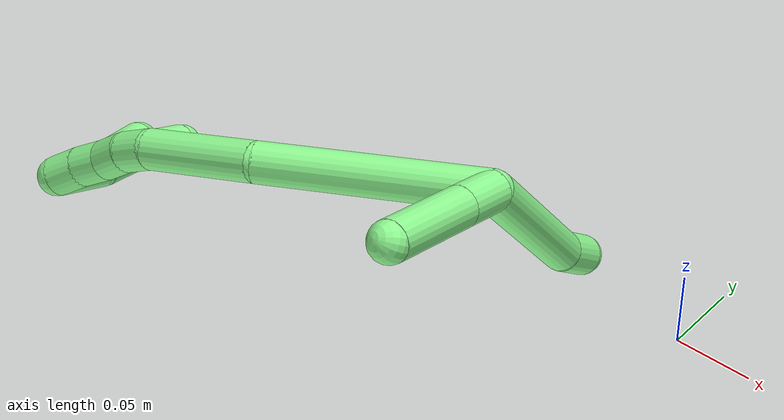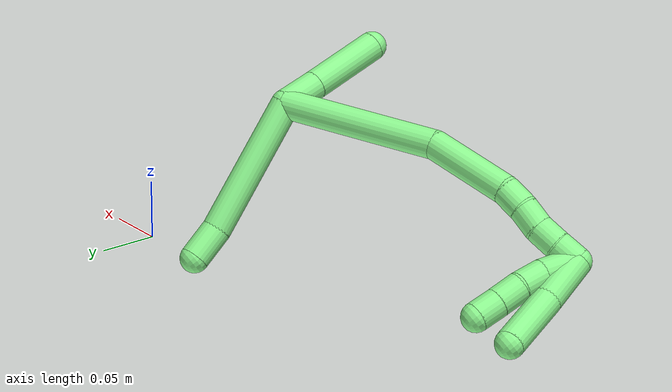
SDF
<sdf version="1.7">
 <world name="default">
  <model name="13">
   <static>0</static>
   <link name="13">
    <collision name="collision-cylinder-e_1_2_8">
     <pose>-0.022403 0.000159 -0.055424 -3.13872 -0.384132 3.12682</pose>
     <geometry><cylinder><radius>0.0125</radius><length>0.119563</length></cylinder></geometry>
     <surface>
      <friction><ode><mu>1.16</mu><mu2>1.16</mu2><slip1>0</slip1><slip2>0</slip2></ode></friction>
      <contact><ode><kp>1e+06</kp><kd>1</kd><max_vel>0</max_vel><min_depth>0.001</min_depth></ode></contact>
     </surface>
    </collision>
    <visual name="visual-cylinder-e_1_2_8">
     <pose>-0.022403 0.000159 -0.055424 -3.13872 -0.384132 3.12682</pose>
     <geometry><cylinder><radius>0.0125</radius><length>0.119563</length></cylinder></geometry>
     <material><ambient>0.564706 0.984314 0.572549 1</ambient></material>
    </visual>
    <collision name="collision-cylinder-e_2_8_6">
     <pose>-0.048424 0.002939 -0.125397 -2.96337 -0.239979 1.8661</pose>
     <geometry><cylinder><radius>0.0125</radius><length>0.030437</length></cylinder></geometry>
     <surface>
      <friction><ode><mu>1.16</mu><mu2>1.16</mu2><slip1>0</slip1><slip2>0</slip2></ode></friction>
      <contact><ode><kp>1e+06</kp><kd>1</kd><max_vel>0</max_vel><min_depth>0.001</min_depth></ode></contact>
     </surface>
    </collision>
    <visual name="visual-cylinder-e_2_8_6">
     <pose>-0.048424 0.002939 -0.125397 -2.96337 -0.239979 1.8661</pose>
     <geometry><cylinder><radius>0.0125</radius><length>0.030437</length></cylinder></geometry>
     <material><ambient>0.564706 0.984314 0.572549 1</ambient></material>
    </visual>
    <collision name="collision-cylinder-e_1_2_9">
     <pose>-0.001057 -0.007156 0.014824 0.44976 -0.064145 -0.014678</pose>
     <geometry><cylinder><radius>0.0125</radius><length>0.03299</length></cylinder></geometry>
     <surface>
      <friction><ode><mu>1.16</mu><mu2>1.16</mu2><slip1>0</slip1><slip2>0</slip2></ode></friction>
      <contact><ode><kp>1e+06</kp><kd>1</kd><max_vel>0</max_vel><min_depth>0.001</min_depth></ode></contact>
     </surface>
    </collision>
    <visual name="visual-cylinder-e_1_2_9">
     <pose>-0.001057 -0.007156 0.014824 0.44976 -0.064145 -0.014678</pose>
     <geometry><cylinder><radius>0.0125</radius><length>0.03299</length></cylinder></geometry>
     <material><ambient>0.564706 0.984314 0.572549 1</ambient></material>
    </visual>
    <collision name="collision-cylinder-e_2_9_5">
     <pose>-0.003573 -0.028884 0.059783 0.450388 -0.043548 -0.009977</pose>
     <geometry><cylinder><radius>0.0125</radius><length>0.06701</length></cylinder></geometry>
     <surface>
      <friction><ode><mu>1.16</mu><mu2>1.16</mu2><slip1>0</slip1><slip2>0</slip2></ode></friction>
      <contact><ode><kp>1e+06</kp><kd>1</kd><max_vel>0</max_vel><min_depth>0.001</min_depth></ode></contact>
     </surface>
    </collision>
    <visual name="visual-cylinder-e_2_9_5">
     <pose>-0.003573 -0.028884 0.059783 0.450388 -0.043548 -0.009977</pose>
     <geometry><cylinder><radius>0.0125</radius><length>0.06701</length></cylinder></geometry>
     <material><ambient>0.564706 0.984314 0.572549 1</ambient></material>
    </visual>
    <collision name="collision-cylinder-e_1_2_10">
     <pose>-0.053494 0.028206 0.035093 -0.677025 -0.871167 0.324812</pose>
     <geometry><cylinder><radius>0.0125</radius><length>0.13984</length></cylinder></geometry>
     <surface>
      <friction><ode><mu>1.16</mu><mu2>1.16</mu2><slip1>0</slip1><slip2>0</slip2></ode></friction>
      <contact><ode><kp>1e+06</kp><kd>1</kd><max_vel>0</max_vel><min_depth>0.001</min_depth></ode></contact>
     </surface>
    </collision>
    <visual name="visual-cylinder-e_1_2_10">
     <pose>-0.053494 0.028206 0.035093 -0.677025 -0.871167 0.324812</pose>
     <geometry><cylinder><radius>0.0125</radius><length>0.13984</length></cylinder></geometry>
     <material><ambient>0.564706 0.984314 0.572549 1</ambient></material>
    </visual>
    <collision name="collision-cylinder-e_2_10_11">
     <pose>-0.139571 0.074841 0.079103 -1.12017 -1.00982 0.667243</pose>
     <geometry><cylinder><radius>0.0125</radius><length>0.076959</length></cylinder></geometry>
     <surface>
      <friction><ode><mu>1.16</mu><mu2>1.16</mu2><slip1>0</slip1><slip2>0</slip2></ode></friction>
      <contact><ode><kp>1e+06</kp><kd>1</kd><max_vel>0</max_vel><min_depth>0.001</min_depth></ode></contact>
     </surface>
    </collision>
    <visual name="visual-cylinder-e_2_10_11">
     <pose>-0.139571 0.074841 0.079103 -1.12017 -1.00982 0.667243</pose>
     <geometry><cylinder><radius>0.0125</radius><length>0.076959</length></cylinder></geometry>
     <material><ambient>0.564706 0.984314 0.572549 1</ambient></material>
    </visual>
    <collision name="collision-cylinder-e_3_11_12">
     <pose>-0.182139 0.097153 0.088574 -1.42872 -1.19642 1.06749</pose>
     <geometry><cylinder><radius>0.0125</radius><length>0.02146</length></cylinder></geometry>
     <surface>
      <friction><ode><mu>1.16</mu><mu2>1.16</mu2><slip1>0</slip1><slip2>0</slip2></ode></friction>
      <contact><ode><kp>1e+06</kp><kd>1</kd><max_vel>0</max_vel><min_depth>0.001</min_depth></ode></contact>
     </surface>
    </collision>
    <visual name="visual-cylinder-e_3_11_12">
     <pose>-0.182139 0.097153 0.088574 -1.42872 -1.19642 1.06749</pose>
     <geometry><cylinder><radius>0.0125</radius><length>0.02146</length></cylinder></geometry>
     <material><ambient>0.564706 0.984314 0.572549 1</ambient></material>
    </visual>
    <collision name="collision-cylinder-e_4_12_13">
     <pose>-0.202243 0.103394 0.088517 -1.82539 -1.3346 1.58976</pose>
     <geometry><cylinder><radius>0.0125</radius><length>0.020811</length></cylinder></geometry>
     <surface>
      <friction><ode><mu>1.16</mu><mu2>1.16</mu2><slip1>0</slip1><slip2>0</slip2></ode></friction>
      <contact><ode><kp>1e+06</kp><kd>1</kd><max_vel>0</max_vel><min_depth>0.001</min_depth></ode></contact>
     </surface>
    </collision>
    <visual name="visual-cylinder-e_4_12_13">
     <pose>-0.202243 0.103394 0.088517 -1.82539 -1.3346 1.58976</pose>
     <geometry><cylinder><radius>0.0125</radius><length>0.020811</length></cylinder></geometry>
     <material><ambient>0.564706 0.984314 0.572549 1</ambient></material>
    </visual>
    <collision name="collision-cylinder-e_5_13_14">
     <pose>-0.222234 0.108056 0.089176 -1.06644 -1.31022 0.851504</pose>
     <geometry><cylinder><radius>0.0125</radius><length>0.02044</length></cylinder></geometry>
     <surface>
      <friction><ode><mu>1.16</mu><mu2>1.16</mu2><slip1>0</slip1><slip2>0</slip2></ode></friction>
      <contact><ode><kp>1e+06</kp><kd>1</kd><max_vel>0</max_vel><min_depth>0.001</min_depth></ode></contact>
     </surface>
    </collision>
    <visual name="visual-cylinder-e_5_13_14">
     <pose>-0.222234 0.108056 0.089176 -1.06644 -1.31022 0.851504</pose>
     <geometry><cylinder><radius>0.0125</radius><length>0.02044</length></cylinder></geometry>
     <material><ambient>0.564706 0.984314 0.572549 1</ambient></material>
    </visual>
    <collision name="collision-cylinder-e_6_14_1">
     <pose>-0.242141 0.111601 0.092117 -0.639286 -1.36648 0.526382</pose>
     <geometry><cylinder><radius>0.0125</radius><length>0.02049</length></cylinder></geometry>
     <surface>
      <friction><ode><mu>1.16</mu><mu2>1.16</mu2><slip1>0</slip1><slip2>0</slip2></ode></friction>
      <contact><ode><kp>1e+06</kp><kd>1</kd><max_vel>0</max_vel><min_depth>0.001</min_depth></ode></contact>
     </surface>
    </collision>
    <visual name="visual-cylinder-e_6_14_1">
     <pose>-0.242141 0.111601 0.092117 -0.639286 -1.36648 0.526382</pose>
     <geometry><cylinder><radius>0.0125</radius><length>0.02049</length></cylinder></geometry>
     <material><ambient>0.564706 0.984314 0.572549 1</ambient></material>
    </visual>
    <collision name="collision-cylinder-e_1_1_15">
     <pose>-0.247069 0.116261 0.079588 -2.90523 0.336226 -1.92065</pose>
     <geometry><cylinder><radius>0.0125</radius><length>0.030939</length></cylinder></geometry>
     <surface>
      <friction><ode><mu>1.16</mu><mu2>1.16</mu2><slip1>0</slip1><slip2>0</slip2></ode></friction>
      <contact><ode><kp>1e+06</kp><kd>1</kd><max_vel>0</max_vel><min_depth>0.001</min_depth></ode></contact>
     </surface>
    </collision>
    <visual name="visual-cylinder-e_1_1_15">
     <pose>-0.247069 0.116261 0.079588 -2.90523 0.336226 -1.92065</pose>
     <geometry><cylinder><radius>0.0125</radius><length>0.030939</length></cylinder></geometry>
     <material><ambient>0.564706 0.984314 0.572549 1</ambient></material>
    </visual>
    <collision name="collision-cylinder-e_2_15_16">
     <pose>-0.240043 0.125423 0.054787 -2.64528 0.158124 -0.606104</pose>
     <geometry><cylinder><radius>0.0125</radius><length>0.024421</length></cylinder></geometry>
     <surface>
      <friction><ode><mu>1.16</mu><mu2>1.16</mu2><slip1>0</slip1><slip2>0</slip2></ode></friction>
      <contact><ode><kp>1e+06</kp><kd>1</kd><max_vel>0</max_vel><min_depth>0.001</min_depth></ode></contact>
     </surface>
    </collision>
    <visual name="visual-cylinder-e_2_15_16">
     <pose>-0.240043 0.125423 0.054787 -2.64528 0.158124 -0.606104</pose>
     <geometry><cylinder><radius>0.0125</radius><length>0.024421</length></cylinder></geometry>
     <material><ambient>0.564706 0.984314 0.572549 1</ambient></material>
    </visual>
    <collision name="collision-cylinder-e_3_16_17">
     <pose>-0.23733 0.134804 0.033219 -2.82112 0.068253 -0.416336</pose>
     <geometry><cylinder><radius>0.0125</radius><length>0.023161</length></cylinder></geometry>
     <surface>
      <friction><ode><mu>1.16</mu><mu2>1.16</mu2><slip1>0</slip1><slip2>0</slip2></ode></friction>
      <contact><ode><kp>1e+06</kp><kd>1</kd><max_vel>0</max_vel><min_depth>0.001</min_depth></ode></contact>
     </surface>
    </collision>
    <visual name="visual-cylinder-e_3_16_17">
     <pose>-0.23733 0.134804 0.033219 -2.82112 0.068253 -0.416336</pose>
     <geometry><cylinder><radius>0.0125</radius><length>0.023161</length></cylinder></geometry>
     <material><ambient>0.564706 0.984314 0.572549 1</ambient></material>
    </visual>
    <collision name="collision-cylinder-e_4_17_4">
     <pose>-0.235552 0.14167 0.012057 -2.83513 0.092151 -0.580253</pose>
     <geometry><cylinder><radius>0.0125</radius><length>0.021479</length></cylinder></geometry>
     <surface>
      <friction><ode><mu>1.16</mu><mu2>1.16</mu2><slip1>0</slip1><slip2>0</slip2></ode></friction>
      <contact><ode><kp>1e+06</kp><kd>1</kd><max_vel>0</max_vel><min_depth>0.001</min_depth></ode></contact>
     </surface>
    </collision>
    <visual name="visual-cylinder-e_4_17_4">
     <pose>-0.235552 0.14167 0.012057 -2.83513 0.092151 -0.580253</pose>
     <geometry><cylinder><radius>0.0125</radius><length>0.021479</length></cylinder></geometry>
     <material><ambient>0.564706 0.984314 0.572549 1</ambient></material>
    </visual>
    <collision name="collision-cylinder-e_1_1_18">
     <pose>-0.25612 0.121726 0.074274 -2.71427 -0.182069 0.796493</pose>
     <geometry><cylinder><radius>0.0125</radius><length>0.043597</length></cylinder></geometry>
     <surface>
      <friction><ode><mu>1.16</mu><mu2>1.16</mu2><slip1>0</slip1><slip2>0</slip2></ode></friction>
      <contact><ode><kp>1e+06</kp><kd>1</kd><max_vel>0</max_vel><min_depth>0.001</min_depth></ode></contact>
     </surface>
    </collision>
    <visual name="visual-cylinder-e_1_1_18">
     <pose>-0.25612 0.121726 0.074274 -2.71427 -0.182069 0.796493</pose>
     <geometry><cylinder><radius>0.0125</radius><length>0.043597</length></cylinder></geometry>
     <material><ambient>0.564706 0.984314 0.572549 1</ambient></material>
    </visual>
    <collision name="collision-cylinder-e_2_18_3">
     <pose>-0.263537 0.146143 0.031482 -2.55328 -0.12336 0.402213</pose>
     <geometry><cylinder><radius>0.0125</radius><length>0.056403</length></cylinder></geometry>
     <surface>
      <friction><ode><mu>1.16</mu><mu2>1.16</mu2><slip1>0</slip1><slip2>0</slip2></ode></friction>
      <contact><ode><kp>1e+06</kp><kd>1</kd><max_vel>0</max_vel><min_depth>0.001</min_depth></ode></contact>
     </surface>
    </collision>
    <visual name="visual-cylinder-e_2_18_3">
     <pose>-0.263537 0.146143 0.031482 -2.55328 -0.12336 0.402213</pose>
     <geometry><cylinder><radius>0.0125</radius><length>0.056403</length></cylinder></geometry>
     <material><ambient>0.564706 0.984314 0.572549 1</ambient></material>
    </visual>
    <collision name="collision-sphere-3">
     <pose>-0.267007 0.161674 0.0082 0 -0 0</pose>
     <geometry><sphere><radius>0.0125</radius></sphere></geometry>
     <surface>
      <friction><ode><mu>1.16</mu><mu2>1.16</mu2><slip1>0</slip1><slip2>0</slip2></ode></friction>
      <contact><ode><kp>1e+06</kp><kd>1</kd><max_vel>0</max_vel><min_depth>0.001</min_depth></ode></contact>
     </surface>
    </collision>
    <visual name="visual-sphere-3">
     <pose>-0.267007 0.161674 0.0082 0 -0 0</pose>
     <geometry><sphere><radius>0.0125</radius></sphere></geometry>
     <material><ambient>0.564706 0.984314 0.572549 1</ambient></material>
    </visual>
    <collision name="collision-sphere-10">
     <pose>-0.106989 0.056413 0.070187 0 -0 0</pose>
     <geometry><sphere><radius>0.0125</radius></sphere></geometry>
     <surface>
      <friction><ode><mu>1.16</mu><mu2>1.16</mu2><slip1>0</slip1><slip2>0</slip2></ode></friction>
      <contact><ode><kp>1e+06</kp><kd>1</kd><max_vel>0</max_vel><min_depth>0.001</min_depth></ode></contact>
     </surface>
    </collision>
    <visual name="visual-sphere-10">
     <pose>-0.106989 0.056413 0.070187 0 -0 0</pose>
     <geometry><sphere><radius>0.0125</radius></sphere></geometry>
     <material><ambient>0.564706 0.984314 0.572549 1</ambient></material>
    </visual>
    <collision name="collision-sphere-5">
     <pose>-0.005032 -0.043456 0.089919 0 -0 0</pose>
     <geometry><sphere><radius>0.0125</radius></sphere></geometry>
     <surface>
      <friction><ode><mu>1.16</mu><mu2>1.16</mu2><slip1>0</slip1><slip2>0</slip2></ode></friction>
      <contact><ode><kp>1e+06</kp><kd>1</kd><max_vel>0</max_vel><min_depth>0.001</min_depth></ode></contact>
     </surface>
    </collision>
    <visual name="visual-sphere-5">
     <pose>-0.005032 -0.043456 0.089919 0 -0 0</pose>
     <geometry><sphere><radius>0.0125</radius></sphere></geometry>
     <material><ambient>0.564706 0.984314 0.572549 1</ambient></material>
    </visual>
    <collision name="collision-sphere-6">
     <pose>-0.052041 0.00556 -0.139946 0 -0 0</pose>
     <geometry><sphere><radius>0.0125</radius></sphere></geometry>
     <surface>
      <friction><ode><mu>1.16</mu><mu2>1.16</mu2><slip1>0</slip1><slip2>0</slip2></ode></friction>
      <contact><ode><kp>1e+06</kp><kd>1</kd><max_vel>0</max_vel><min_depth>0.001</min_depth></ode></contact>
     </surface>
    </collision>
    <visual name="visual-sphere-6">
     <pose>-0.052041 0.00556 -0.139946 0 -0 0</pose>
     <geometry><sphere><radius>0.0125</radius></sphere></geometry>
     <material><ambient>0.564706 0.984314 0.572549 1</ambient></material>
    </visual>
    <collision name="collision-sphere-9">
     <pose>-0.002115 -0.014313 0.029648 0 -0 0</pose>
     <geometry><sphere><radius>0.0125</radius></sphere></geometry>
     <surface>
      <friction><ode><mu>1.16</mu><mu2>1.16</mu2><slip1>0</slip1><slip2>0</slip2></ode></friction>
      <contact><ode><kp>1e+06</kp><kd>1</kd><max_vel>0</max_vel><min_depth>0.001</min_depth></ode></contact>
     </surface>
    </collision>
    <visual name="visual-sphere-9">
     <pose>-0.002115 -0.014313 0.029648 0 -0 0</pose>
     <geometry><sphere><radius>0.0125</radius></sphere></geometry>
     <material><ambient>0.564706 0.984314 0.572549 1</ambient></material>
    </visual>
    <collision name="collision-sphere-2">
     <geometry><sphere><radius>0.0125</radius></sphere></geometry>
     <surface>
      <friction><ode><mu>1.16</mu><mu2>1.16</mu2><slip1>0</slip1><slip2>0</slip2></ode></friction>
      <contact><ode><kp>1e+06</kp><kd>1</kd><max_vel>0</max_vel><min_depth>0.001</min_depth></ode></contact>
     </surface>
    </collision>
    <visual name="visual-sphere-2">
     <geometry><sphere><radius>0.0125</radius></sphere></geometry>
     <material><ambient>0.564706 0.984314 0.572549 1</ambient></material>
    </visual>
    <collision name="collision-sphere-8">
     <pose>-0.044807 0.000319 -0.110849 0 -0 0</pose>
     <geometry><sphere><radius>0.0125</radius></sphere></geometry>
     <surface>
      <friction><ode><mu>1.16</mu><mu2>1.16</mu2><slip1>0</slip1><slip2>0</slip2></ode></friction>
      <contact><ode><kp>1e+06</kp><kd>1</kd><max_vel>0</max_vel><min_depth>0.001</min_depth></ode></contact>
     </surface>
    </collision>
    <visual name="visual-sphere-8">
     <pose>-0.044807 0.000319 -0.110849 0 -0 0</pose>
     <geometry><sphere><radius>0.0125</radius></sphere></geometry>
     <material><ambient>0.564706 0.984314 0.572549 1</ambient></material>
    </visual>
    <collision name="collision-sphere-11">
     <pose>-0.172153 0.093269 0.088019 0 -0 0</pose>
     <geometry><sphere><radius>0.0125</radius></sphere></geometry>
     <surface>
      <friction><ode><mu>1.16</mu><mu2>1.16</mu2><slip1>0</slip1><slip2>0</slip2></ode></friction>
      <contact><ode><kp>1e+06</kp><kd>1</kd><max_vel>0</max_vel><min_depth>0.001</min_depth></ode></contact>
     </surface>
    </collision>
    <visual name="visual-sphere-11">
     <pose>-0.172153 0.093269 0.088019 0 -0 0</pose>
     <geometry><sphere><radius>0.0125</radius></sphere></geometry>
     <material><ambient>0.564706 0.984314 0.572549 1</ambient></material>
    </visual>
    <collision name="collision-sphere-12">
     <pose>-0.192126 0.101038 0.08913 0 -0 0</pose>
     <geometry><sphere><radius>0.0125</radius></sphere></geometry>
     <surface>
      <friction><ode><mu>1.16</mu><mu2>1.16</mu2><slip1>0</slip1><slip2>0</slip2></ode></friction>
      <contact><ode><kp>1e+06</kp><kd>1</kd><max_vel>0</max_vel><min_depth>0.001</min_depth></ode></contact>
     </surface>
    </collision>
    <visual name="visual-sphere-12">
     <pose>-0.192126 0.101038 0.08913 0 -0 0</pose>
     <geometry><sphere><radius>0.0125</radius></sphere></geometry>
     <material><ambient>0.564706 0.984314 0.572549 1</ambient></material>
    </visual>
    <collision name="collision-sphere-13">
     <pose>-0.212359 0.105751 0.087904 0 -0 0</pose>
     <geometry><sphere><radius>0.0125</radius></sphere></geometry>
     <surface>
      <friction><ode><mu>1.16</mu><mu2>1.16</mu2><slip1>0</slip1><slip2>0</slip2></ode></friction>
      <contact><ode><kp>1e+06</kp><kd>1</kd><max_vel>0</max_vel><min_depth>0.001</min_depth></ode></contact>
     </surface>
    </collision>
    <visual name="visual-sphere-13">
     <pose>-0.212359 0.105751 0.087904 0 -0 0</pose>
     <geometry><sphere><radius>0.0125</radius></sphere></geometry>
     <material><ambient>0.564706 0.984314 0.572549 1</ambient></material>
    </visual>
    <collision name="collision-sphere-14">
     <pose>-0.232109 0.110361 0.090448 0 -0 0</pose>
     <geometry><sphere><radius>0.0125</radius></sphere></geometry>
     <surface>
      <friction><ode><mu>1.16</mu><mu2>1.16</mu2><slip1>0</slip1><slip2>0</slip2></ode></friction>
      <contact><ode><kp>1e+06</kp><kd>1</kd><max_vel>0</max_vel><min_depth>0.001</min_depth></ode></contact>
     </surface>
    </collision>
    <visual name="visual-sphere-14">
     <pose>-0.232109 0.110361 0.090448 0 -0 0</pose>
     <geometry><sphere><radius>0.0125</radius></sphere></geometry>
     <material><ambient>0.564706 0.984314 0.572549 1</ambient></material>
    </visual>
    <collision name="collision-sphere-1">
     <pose>-0.252173 0.112842 0.093785 0 -0 0</pose>
     <geometry><sphere><radius>0.0125</radius></sphere></geometry>
     <surface>
      <friction><ode><mu>1.16</mu><mu2>1.16</mu2><slip1>0</slip1><slip2>0</slip2></ode></friction>
      <contact><ode><kp>1e+06</kp><kd>1</kd><max_vel>0</max_vel><min_depth>0.001</min_depth></ode></contact>
     </surface>
    </collision>
    <visual name="visual-sphere-1">
     <pose>-0.252173 0.112842 0.093785 0 -0 0</pose>
     <geometry><sphere><radius>0.0125</radius></sphere></geometry>
     <material><ambient>0.564706 0.984314 0.572549 1</ambient></material>
    </visual>
    <collision name="collision-sphere-18">
     <pose>-0.260067 0.130611 0.054764 0 -0 0</pose>
     <geometry><sphere><radius>0.0125</radius></sphere></geometry>
     <surface>
      <friction><ode><mu>1.16</mu><mu2>1.16</mu2><slip1>0</slip1><slip2>0</slip2></ode></friction>
      <contact><ode><kp>1e+06</kp><kd>1</kd><max_vel>0</max_vel><min_depth>0.001</min_depth></ode></contact>
     </surface>
    </collision>
    <visual name="visual-sphere-18">
     <pose>-0.260067 0.130611 0.054764 0 -0 0</pose>
     <geometry><sphere><radius>0.0125</radius></sphere></geometry>
     <material><ambient>0.564706 0.984314 0.572549 1</ambient></material>
    </visual>
    <collision name="collision-sphere-15">
     <pose>-0.241966 0.119681 0.06539 0 -0 0</pose>
     <geometry><sphere><radius>0.0125</radius></sphere></geometry>
     <surface>
      <friction><ode><mu>1.16</mu><mu2>1.16</mu2><slip1>0</slip1><slip2>0</slip2></ode></friction>
      <contact><ode><kp>1e+06</kp><kd>1</kd><max_vel>0</max_vel><min_depth>0.001</min_depth></ode></contact>
     </surface>
    </collision>
    <visual name="visual-sphere-15">
     <pose>-0.241966 0.119681 0.06539 0 -0 0</pose>
     <geometry><sphere><radius>0.0125</radius></sphere></geometry>
     <material><ambient>0.564706 0.984314 0.572549 1</ambient></material>
    </visual>
    <collision name="collision-sphere-16">
     <pose>-0.23812 0.131165 0.044184 0 -0 0</pose>
     <geometry><sphere><radius>0.0125</radius></sphere></geometry>
     <surface>
      <friction><ode><mu>1.16</mu><mu2>1.16</mu2><slip1>0</slip1><slip2>0</slip2></ode></friction>
      <contact><ode><kp>1e+06</kp><kd>1</kd><max_vel>0</max_vel><min_depth>0.001</min_depth></ode></contact>
     </surface>
    </collision>
    <visual name="visual-sphere-16">
     <pose>-0.23812 0.131165 0.044184 0 -0 0</pose>
     <geometry><sphere><radius>0.0125</radius></sphere></geometry>
     <material><ambient>0.564706 0.984314 0.572549 1</ambient></material>
    </visual>
    <collision name="collision-sphere-17">
     <pose>-0.236541 0.138444 0.022253 0 -0 0</pose>
     <geometry><sphere><radius>0.0125</radius></sphere></geometry>
     <surface>
      <friction><ode><mu>1.16</mu><mu2>1.16</mu2><slip1>0</slip1><slip2>0</slip2></ode></friction>
      <contact><ode><kp>1e+06</kp><kd>1</kd><max_vel>0</max_vel><min_depth>0.001</min_depth></ode></contact>
     </surface>
    </collision>
    <visual name="visual-sphere-17">
     <pose>-0.236541 0.138444 0.022253 0 -0 0</pose>
     <geometry><sphere><radius>0.0125</radius></sphere></geometry>
     <material><ambient>0.564706 0.984314 0.572549 1</ambient></material>
    </visual>
    <collision name="collision-sphere-4">
     <pose>-0.234564 0.144896 0.001862 0 -0 0</pose>
     <geometry><sphere><radius>0.0125</radius></sphere></geometry>
     <surface>
      <friction><ode><mu>1.16</mu><mu2>1.16</mu2><slip1>0</slip1><slip2>0</slip2></ode></friction>
      <contact><ode><kp>1e+06</kp><kd>1</kd><max_vel>0</max_vel><min_depth>0.001</min_depth></ode></contact>
     </surface>
    </collision>
    <visual name="visual-sphere-4">
     <pose>-0.234564 0.144896 0.001862 0 -0 0</pose>
     <geometry><sphere><radius>0.0125</radius></sphere></geometry>
     <material><ambient>0.564706 0.984314 0.572549 1</ambient></material>
    </visual>
    <inertial>
     <pose>-0.120484 0.056997 0.02979 0 -0 0</pose>
     <mass>0.75</mass>
     <inertia><ixx>0.000131</ixx><ixy>0</ixy><ixz>0</ixz><iyy>0.00049</iyy><iyz>0</iyz><izz>0.00015</izz></inertia>
    </inertial>
   </link>
   <pose>-0.080543 -0.082249 0.125306 0.643649 -0.780501 0.437589</pose>
  </model>
 </world>
</sdf>
